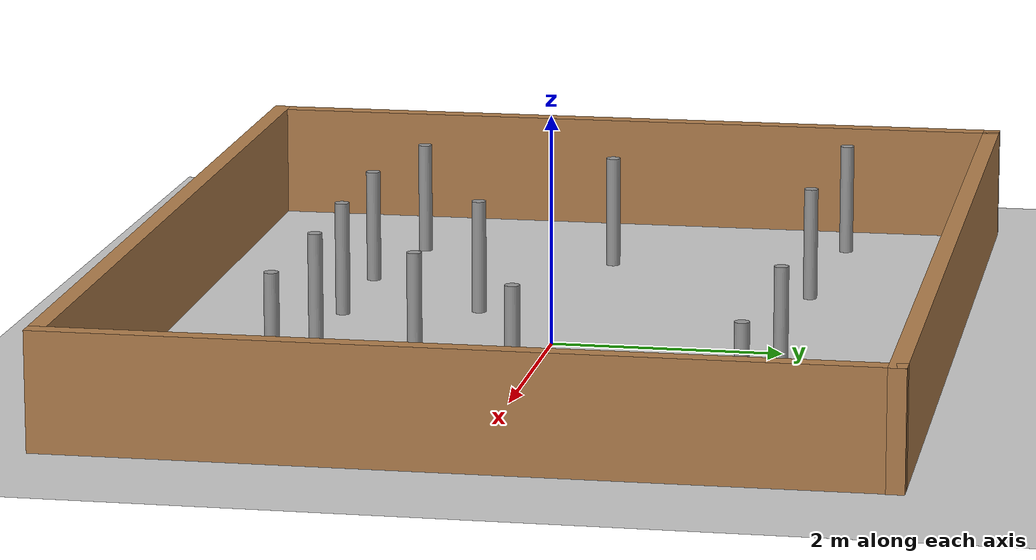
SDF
<sdf version="1.7">
 <world name="default">
  <light name="sun" type="directional">
   <pose>0 0 10 0 -0 0</pose>
   <diffuse>0.8 0.8 0.8 1</diffuse>
   <specular>0.2 0.2 0.2 1</specular>
   <attenuation>
    <range>1000</range>
    <constant>0.9</constant>
    <linear>0.01</linear>
    <quadratic>0.001</quadratic>
   </attenuation>
   <direction>-0.5 0.1 -0.9</direction>
   <spot><inner_angle>0</inner_angle><outer_angle>0</outer_angle><falloff>0</falloff></spot>
  </light>
  <model name="ground_plane">
   <static>1</static>
   <link name="link">
    <collision name="collision">
     <geometry><plane><normal>0 0 1</normal><size>100 100</size></plane></geometry>
     <surface>
      <contact><collide_bitmask>65535</collide_bitmask></contact>
      <friction><ode><mu>100</mu><mu2>50</mu2></ode></friction>
     </surface>
    </collision>
    <visual name="visual">
     <cast_shadows>0</cast_shadows>
     <geometry><plane><normal>0 0 1</normal><size>100 100</size></plane></geometry>
     <material>
      <script><uri>file://media/materials/scripts/gazebo.material</uri><name>Gazebo/Grey</name></script>
     </material>
    </visual>
   </link>
  </model>
  <gravity>0 0 -9.8</gravity>
  <magnetic_field>6e-06 2.3e-05 -4.2e-05</magnetic_field>
  <atmosphere type="adiabatic"/>
  <physics type="ode">
   <max_step_size>0.001</max_step_size>
   <real_time_factor>1</real_time_factor>
   <real_time_update_rate>1000</real_time_update_rate>
  </physics>
  <scene><ambient>0.4 0.4 0.4 1</ambient><background>0.7 0.7 0.7 1</background><shadows>1</shadows></scene>
  <spherical_coordinates>
   <surface_model>EARTH_WGS84</surface_model>
   <latitude_deg>0</latitude_deg>
   <longitude_deg>0</longitude_deg>
   <elevation>0</elevation>
   <heading_deg>0</heading_deg>
  </spherical_coordinates>
  <model name="room">
   <pose>0.28822 -0.0424 0 0 -0 0</pose>
   <link name="Wall_11">
    <collision name="Wall_11_Collision">
     <geometry><box><size>6.95322 0.15 1</size></box></geometry>
     <pose>0 0 0.5 0 -0 0</pose>
    </collision>
    <visual name="Wall_11_Visual">
     <pose>0 0 0.5 0 -0 0</pose>
     <geometry><box><size>6.95322 0.15 1</size></box></geometry>
     <material>
      <script><uri>file://media/materials/scripts/gazebo.material</uri><name>Gazebo/Wood</name></script>
      <ambient>1 1 1 1</ambient>
     </material>
     <meta><layer>0</layer></meta>
    </visual>
    <pose>3.7965 0.045755 0 0 -0 -1.56777</pose>
   </link>
   <link name="Wall_5">
    <collision name="Wall_5_Collision">
     <geometry><box><size>9.03236 0.15 1</size></box></geometry>
     <pose>0 0 0.5 0 -0 0</pose>
    </collision>
    <visual name="Wall_5_Visual">
     <pose>0 0 0.5 0 -0 0</pose>
     <geometry><box><size>9.03236 0.15 1</size></box></geometry>
     <material>
      <script><uri>file://media/materials/scripts/gazebo.material</uri><name>Gazebo/Wood</name></script>
      <ambient>0.760784 0.662745 0.627451 1</ambient>
     </material>
     <meta><layer>0</layer></meta>
    </visual>
    <pose>-0.646169 3.41693 0 0 -0 0.006849</pose>
   </link>
   <link name="Wall_7">
    <collision name="Wall_7_Collision">
     <geometry><box><size>6.98373 0.15 1</size></box></geometry>
     <pose>0 0 0.5 0 -0 0</pose>
    </collision>
    <visual name="Wall_7_Visual">
     <pose>0 0 0.5 0 -0 0</pose>
     <geometry><box><size>6.98373 0.15 1</size></box></geometry>
     <material>
      <script><uri>file://media/materials/scripts/gazebo.material</uri><name>Gazebo/Wood</name></script>
      <ambient>1 1 1 1</ambient>
     </material>
     <meta><layer>0</layer></meta>
    </visual>
    <pose>-5.0661 -0.030289 0 0 -0 -1.56461</pose>
   </link>
   <link name="Wall_9">
    <collision name="Wall_9_Collision">
     <geometry><box><size>9.0022 0.15 1</size></box></geometry>
     <pose>0 0 0.5 0 -0 0</pose>
    </collision>
    <visual name="Wall_9_Visual">
     <pose>0 0 0.5 0 -0 0</pose>
     <geometry><box><size>9.0022 0.15 1</size></box></geometry>
     <material>
      <script><uri>file://media/materials/scripts/gazebo.material</uri><name>Gazebo/Wood</name></script>
      <ambient>1 1 1 1</ambient>
     </material>
     <meta><layer>0</layer></meta>
    </visual>
    <pose>-0.630586 -3.40146 0 0 -0 0.010309</pose>
   </link>
   <static>1</static>
  </model>
  <model name="unit_cylinder">
   <pose>-3.29408 -1.77788 0.499994 0 0 -8.8e-05</pose>
   <link name="link">
    <inertial>
     <mass>1</mass>
     <inertia><ixx>0.145833</ixx><ixy>0</ixy><ixz>0</ixz><iyy>0.145833</iyy><iyz>0</iyz><izz>0.125</izz></inertia>
    </inertial>
    <collision name="collision">
     <geometry><cylinder><radius>0.0620905</radius><length>1</length></cylinder></geometry>
    </collision>
    <visual name="visual">
     <geometry><cylinder><radius>0.0620905</radius><length>1</length></cylinder></geometry>
     <material>
      <script><name>Gazebo/Grey</name><uri>file://media/materials/scripts/gazebo.material</uri></script>
     </material>
    </visual>
   </link>
  </model>
  <model name="unit_cylinder_clone">
   <pose>-2.06369 -2.0065 0.499994 0 0 -0.000215</pose>
   <link name="link">
    <inertial>
     <mass>1</mass>
     <inertia><ixx>0.145833</ixx><ixy>0</ixy><ixz>0</ixz><iyy>0.145833</iyy><iyz>0</iyz><izz>0.125</izz></inertia>
    </inertial>
    <collision name="collision">
     <geometry><cylinder><radius>0.0635663</radius><length>1</length></cylinder></geometry>
    </collision>
    <visual name="visual">
     <geometry><cylinder><radius>0.0635663</radius><length>1</length></cylinder></geometry>
     <material>
      <script><name>Gazebo/Grey</name><uri>file://media/materials/scripts/gazebo.material</uri></script>
     </material>
    </visual>
   </link>
  </model>
  <model name="unit_cylinder_clone_0">
   <pose>-0.752807 -2.00456 0.499996 0 0 -0.000201</pose>
   <link name="link">
    <inertial>
     <mass>1</mass>
     <inertia><ixx>0.145833</ixx><ixy>0</ixy><ixz>0</ixz><iyy>0.145833</iyy><iyz>0</iyz><izz>0.125</izz></inertia>
    </inertial>
    <collision name="collision">
     <geometry><cylinder><radius>0.0635663</radius><length>1</length></cylinder></geometry>
    </collision>
    <visual name="visual">
     <geometry><cylinder><radius>0.0635663</radius><length>1</length></cylinder></geometry>
     <material>
      <script><name>Gazebo/Grey</name><uri>file://media/materials/scripts/gazebo.material</uri></script>
     </material>
    </visual>
   </link>
  </model>
  <model name="unit_cylinder_clone_1">
   <pose>0.446891 -1.97461 0.499994 0 0 -0.000129</pose>
   <link name="link">
    <inertial>
     <mass>1</mass>
     <inertia><ixx>0.145833</ixx><ixy>0</ixy><ixz>0</ixz><iyy>0.145833</iyy><iyz>0</iyz><izz>0.125</izz></inertia>
    </inertial>
    <collision name="collision">
     <geometry><cylinder><radius>0.0635663</radius><length>1</length></cylinder></geometry>
    </collision>
    <visual name="visual">
     <geometry><cylinder><radius>0.0635663</radius><length>1</length></cylinder></geometry>
     <material>
      <script><name>Gazebo/Grey</name><uri>file://media/materials/scripts/gazebo.material</uri></script>
     </material>
    </visual>
   </link>
  </model>
  <model name="unit_cylinder_clone_2">
   <pose>1.00099 -0.996034 0.499996 0 0 -9.1e-05</pose>
   <link name="link">
    <inertial>
     <mass>1</mass>
     <inertia><ixx>0.145833</ixx><ixy>0</ixy><ixz>0</ixz><iyy>0.145833</iyy><iyz>0</iyz><izz>0.125</izz></inertia>
    </inertial>
    <collision name="collision">
     <geometry><cylinder><radius>0.0635663</radius><length>1</length></cylinder></geometry>
    </collision>
    <visual name="visual">
     <geometry><cylinder><radius>0.0635663</radius><length>1</length></cylinder></geometry>
     <material>
      <script><name>Gazebo/Grey</name><uri>file://media/materials/scripts/gazebo.material</uri></script>
     </material>
    </visual>
   </link>
  </model>
  <model name="unit_cylinder_clone_3">
   <pose>1.90816 -2.01151 0.499994 0 0 -0.000126</pose>
   <link name="link">
    <inertial>
     <mass>1</mass>
     <inertia><ixx>0.145833</ixx><ixy>0</ixy><ixz>0</ixz><iyy>0.145833</iyy><iyz>0</iyz><izz>0.125</izz></inertia>
    </inertial>
    <collision name="collision">
     <geometry><cylinder><radius>0.0635663</radius><length>1</length></cylinder></geometry>
    </collision>
    <visual name="visual">
     <geometry><cylinder><radius>0.0635663</radius><length>1</length></cylinder></geometry>
     <material>
      <script><name>Gazebo/Grey</name><uri>file://media/materials/scripts/gazebo.material</uri></script>
     </material>
    </visual>
   </link>
  </model>
  <model name="unit_cylinder_clone_4">
   <pose>2.00626 0.027525 0.499996 0 0 -0.00011</pose>
   <link name="link">
    <inertial>
     <mass>1</mass>
     <inertia><ixx>0.145833</ixx><ixy>0</ixy><ixz>0</ixz><iyy>0.145833</iyy><iyz>0</iyz><izz>0.125</izz></inertia>
    </inertial>
    <collision name="collision">
     <geometry><cylinder><radius>0.0635663</radius><length>1</length></cylinder></geometry>
    </collision>
    <visual name="visual">
     <geometry><cylinder><radius>0.0635663</radius><length>1</length></cylinder></geometry>
     <material>
      <script><name>Gazebo/Grey</name><uri>file://media/materials/scripts/gazebo.material</uri></script>
     </material>
    </visual>
   </link>
  </model>
  <model name="unit_cylinder_clone_5">
   <pose>-1.03174 -0.834855 0.499994 0 0 -0.000106</pose>
   <link name="link">
    <inertial>
     <mass>1</mass>
     <inertia><ixx>0.145833</ixx><ixy>0</ixy><ixz>0</ixz><iyy>0.145833</iyy><iyz>0</iyz><izz>0.125</izz></inertia>
    </inertial>
    <collision name="collision">
     <geometry><cylinder><radius>0.0635663</radius><length>1</length></cylinder></geometry>
    </collision>
    <visual name="visual">
     <geometry><cylinder><radius>0.0635663</radius><length>1</length></cylinder></geometry>
     <material>
      <script><name>Gazebo/Grey</name><uri>file://media/materials/scripts/gazebo.material</uri></script>
     </material>
    </visual>
   </link>
  </model>
  <model name="unit_cylinder_clone_6">
   <pose>-3.01777 0.038054 0.499994 0 0 -8.6e-05</pose>
   <link name="link">
    <inertial>
     <mass>1</mass>
     <inertia><ixx>0.145833</ixx><ixy>0</ixy><ixz>0</ixz><iyy>0.145833</iyy><iyz>0</iyz><izz>0.125</izz></inertia>
    </inertial>
    <collision name="collision">
     <geometry><cylinder><radius>0.0635663</radius><length>1</length></cylinder></geometry>
    </collision>
    <visual name="visual">
     <geometry><cylinder><radius>0.0635663</radius><length>1</length></cylinder></geometry>
     <material>
      <script><name>Gazebo/Grey</name><uri>file://media/materials/scripts/gazebo.material</uri></script>
     </material>
    </visual>
   </link>
  </model>
  <model name="unit_cylinder_clone_7">
   <pose>0.96658 2.10616 0.499994 0 0 -9.6e-05</pose>
   <link name="link">
    <inertial>
     <mass>1</mass>
     <inertia><ixx>0.145833</ixx><ixy>0</ixy><ixz>0</ixz><iyy>0.145833</iyy><iyz>0</iyz><izz>0.125</izz></inertia>
    </inertial>
    <collision name="collision">
     <geometry><cylinder><radius>0.0620904</radius><length>1</length></cylinder></geometry>
    </collision>
    <visual name="visual">
     <geometry><cylinder><radius>0.0620904</radius><length>1</length></cylinder></geometry>
     <material>
      <script><name>Gazebo/Grey</name><uri>file://media/materials/scripts/gazebo.material</uri></script>
     </material>
    </visual>
   </link>
  </model>
  <model name="unit_cylinder_clone_8">
   <pose>-2.03139 1.98306 0.499994 0 0 -7.8e-05</pose>
   <link name="link">
    <inertial>
     <mass>1</mass>
     <inertia><ixx>0.145833</ixx><ixy>0</ixy><ixz>0</ixz><iyy>0.145833</iyy><iyz>0</iyz><izz>0.125</izz></inertia>
    </inertial>
    <collision name="collision">
     <geometry><cylinder><radius>0.0620904</radius><length>1</length></cylinder></geometry>
    </collision>
    <visual name="visual">
     <geometry><cylinder><radius>0.0620904</radius><length>1</length></cylinder></geometry>
     <material>
      <script><name>Gazebo/Grey</name><uri>file://media/materials/scripts/gazebo.material</uri></script>
     </material>
    </visual>
   </link>
  </model>
  <model name="unit_cylinder_clone_9">
   <pose>2.90558 2.04219 0.499995 0 0 -8e-05</pose>
   <link name="link">
    <inertial>
     <mass>1</mass>
     <inertia><ixx>0.145833</ixx><ixy>0</ixy><ixz>0</ixz><iyy>0.145833</iyy><iyz>0</iyz><izz>0.125</izz></inertia>
    </inertial>
    <collision name="collision">
     <geometry><cylinder><radius>0.0620904</radius><length>1</length></cylinder></geometry>
    </collision>
    <visual name="visual">
     <geometry><cylinder><radius>0.0620904</radius><length>1</length></cylinder></geometry>
     <material>
      <script><name>Gazebo/Grey</name><uri>file://media/materials/scripts/gazebo.material</uri></script>
     </material>
    </visual>
   </link>
  </model>
  <model name="unit_cylinder_clone_10">
   <pose>-3.91928 2.08691 0.499991 -0 1e-06 -8.4e-05</pose>
   <link name="link">
    <inertial>
     <mass>1</mass>
     <inertia><ixx>0.145833</ixx><ixy>0</ixy><ixz>0</ixz><iyy>0.145833</iyy><iyz>0</iyz><izz>0.125</izz></inertia>
    </inertial>
    <collision name="collision">
     <geometry><cylinder><radius>0.0620904</radius><length>1</length></cylinder></geometry>
    </collision>
    <visual name="visual">
     <geometry><cylinder><radius>0.0620904</radius><length>1</length></cylinder></geometry>
     <material>
      <script><name>Gazebo/Grey</name><uri>file://media/materials/scripts/gazebo.material</uri></script>
     </material>
    </visual>
   </link>
  </model>
 </world>
</sdf>
